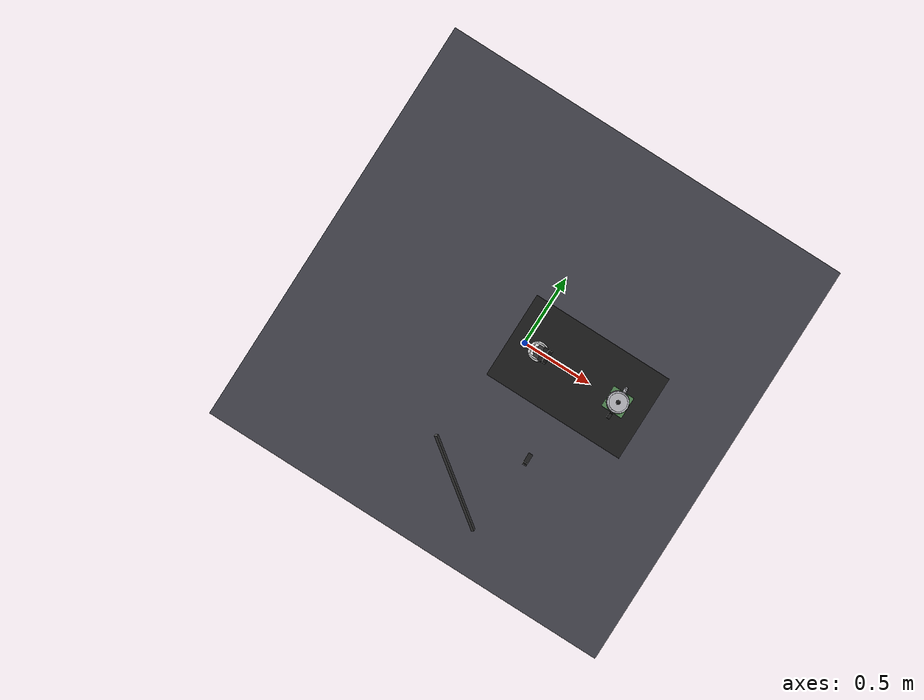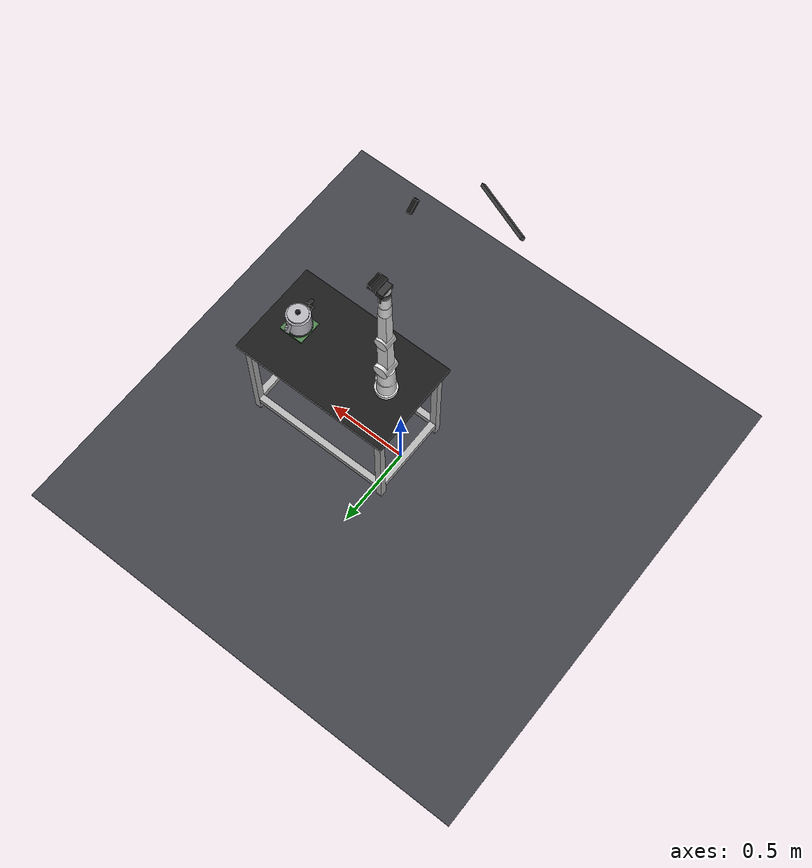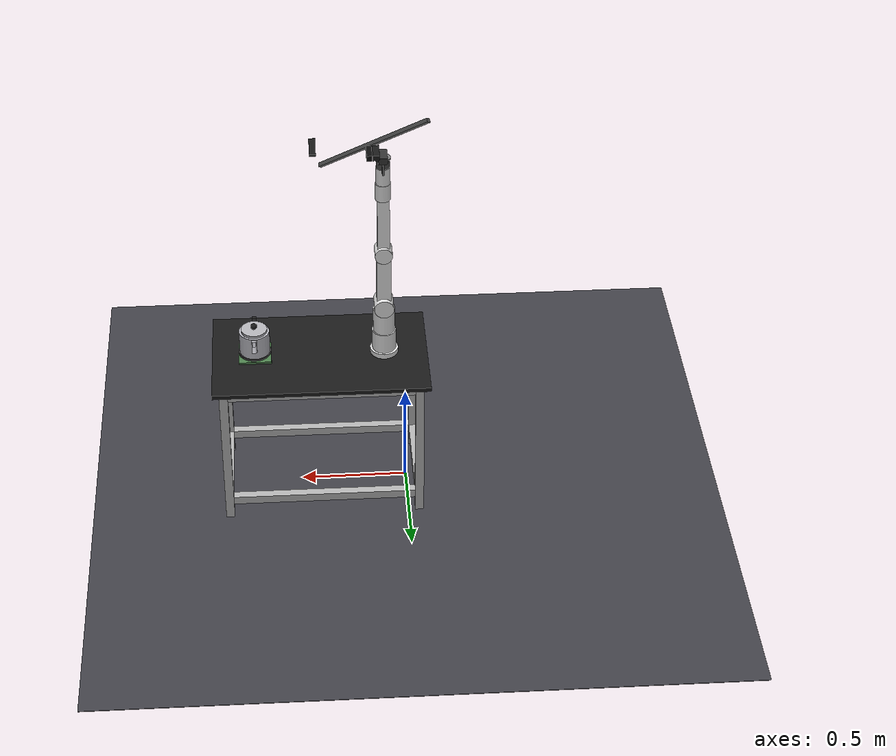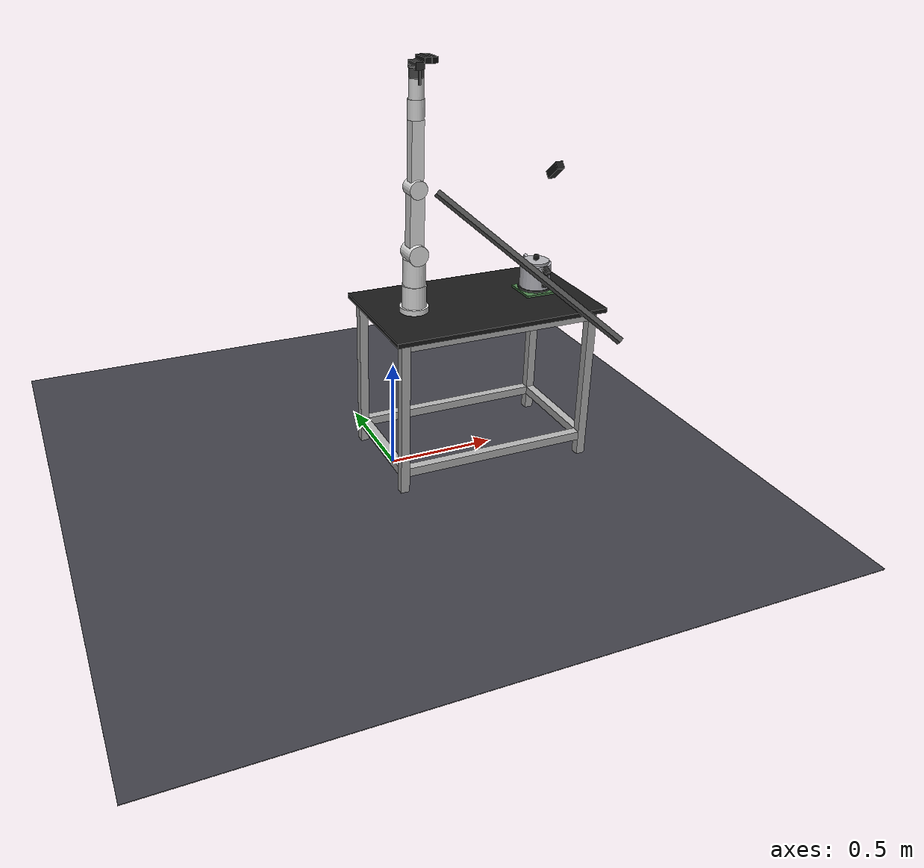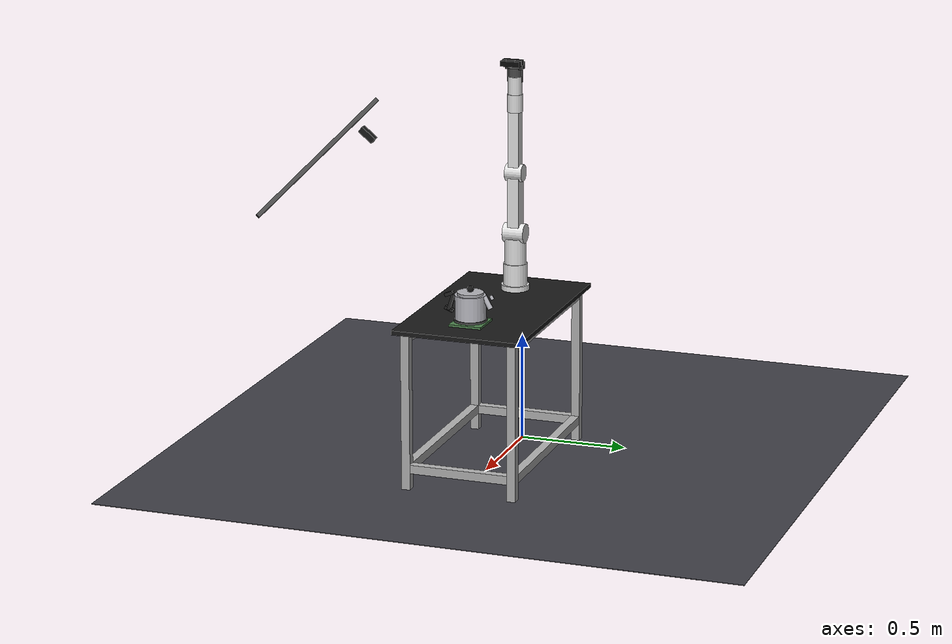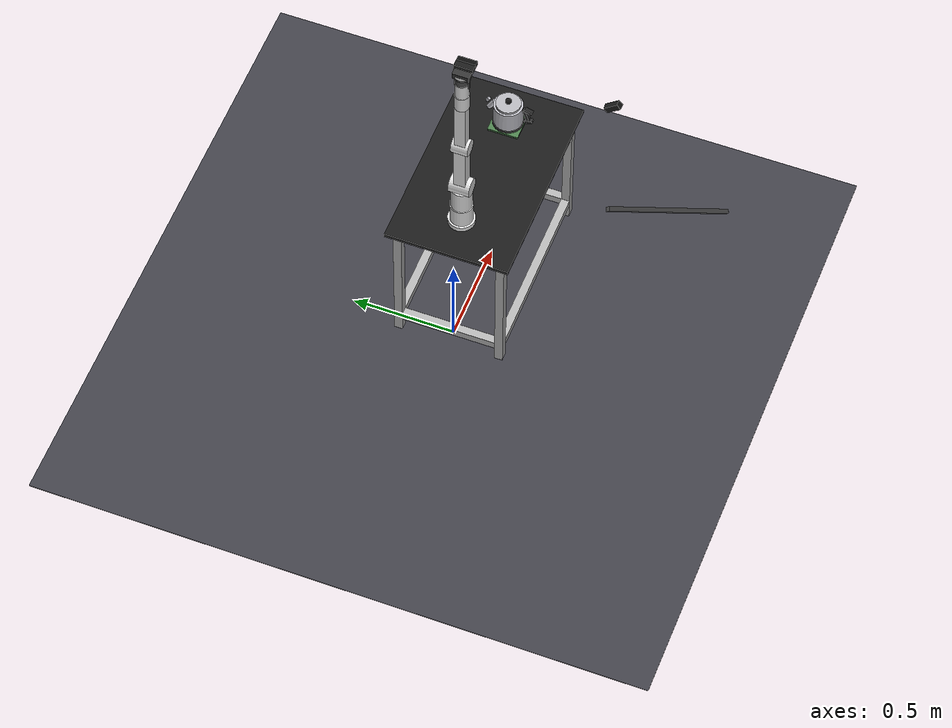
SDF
<?xml version="1.0" ?>
<sdf version="1.9">
  <world name="kettle_test">

    <!-- Physics settings -->
    <physics name="1ms" type="ignored">
      <max_step_size>0.001</max_step_size>
      <real_time_factor>1.0</real_time_factor>
    </physics>

    <!-- Required plugins -->
    <plugin filename="gz-sim-physics-system" name="gz::sim::systems::Physics"/>
    <plugin filename="gz-sim-sensors-system" name="gz::sim::systems::Sensors">
      <render_engine>ogre2</render_engine>
    </plugin>
    <plugin filename="gz-sim-scene-broadcaster-system" name="gz::sim::systems::SceneBroadcaster"/>
    <plugin filename="gz-sim-contact-system" name="gz::sim::systems::Contact"/>

    <!-- ==================== LIGHTING ==================== -->

    <!-- Overhead industrial lighting -->
    <light type="directional" name="overhead_light">
      <cast_shadows>true</cast_shadows>
      <pose>0 0 3 0 0 0</pose>
      <diffuse>0.9 0.9 0.9 1</diffuse>
      <specular>0.3 0.3 0.3 1</specular>
      <direction>0 0 -1</direction>
    </light>

    <!-- Fill light from side -->
    <light type="directional" name="fill_light">
      <cast_shadows>false</cast_shadows>
      <pose>2 2 2 0 0 0</pose>
      <diffuse>0.4 0.4 0.4 1</diffuse>
      <direction>-0.5 -0.5 -0.5</direction>
    </light>

    <!-- Back fill -->
    <light type="directional" name="back_light">
      <cast_shadows>false</cast_shadows>
      <pose>-2 0 2 0 0 0</pose>
      <diffuse>0.2 0.2 0.25 1</diffuse>
      <direction>0.5 0 -0.5</direction>
    </light>

    <!-- ==================== FLOOR ==================== -->

    <model name="floor">
      <static>true</static>
      <pose>0 0 0 0 0 0</pose>
      <link name="link">
        <collision name="collision">
          <geometry>
            <plane>
              <normal>0 0 1</normal>
              <size>3 3</size>
            </plane>
          </geometry>
        </collision>
        <visual name="visual">
          <geometry>
            <plane>
              <normal>0 0 1</normal>
              <size>3 3</size>
            </plane>
          </geometry>
          <material>
            <ambient>0.25 0.25 0.28 1</ambient>
            <diffuse>0.25 0.25 0.28 1</diffuse>
          </material>
        </visual>
      </link>
    </model>

    <!-- ==================== WORK TABLE ==================== -->
    <!--
      Aluminum extrusion style table (like 80/20)
      Surface at z=0.75m (standard work height)
      Size: 1.0m x 0.6m
    -->

    <model name="work_table">
      <static>true</static>
      <pose>0.4 0 0 0 0 0</pose>
      <link name="table_link">

        <!-- Table surface (black phenolic) -->
        <collision name="surface_collision">
          <pose>0 0 0.74 0 0 0</pose>
          <geometry>
            <box><size>1.0 0.6 0.02</size></box>
          </geometry>
          <surface>
            <friction>
              <ode><mu>0.9</mu><mu2>0.9</mu2></ode>
            </friction>
          </surface>
        </collision>
        <visual name="surface_visual">
          <pose>0 0 0.74 0 0 0</pose>
          <geometry>
            <box><size>1.0 0.6 0.02</size></box>
          </geometry>
          <material>
            <ambient>0.1 0.1 0.1 1</ambient>
            <diffuse>0.1 0.1 0.1 1</diffuse>
          </material>
        </visual>

        <!-- Aluminum extrusion legs (40mm profile) -->
        <visual name="leg_fl">
          <pose>0.45 0.25 0.365 0 0 0</pose>
          <geometry><box><size>0.04 0.04 0.73</size></box></geometry>
          <material><ambient>0.7 0.7 0.7 1</ambient><diffuse>0.7 0.7 0.7 1</diffuse></material>
        </visual>
        <visual name="leg_fr">
          <pose>0.45 -0.25 0.365 0 0 0</pose>
          <geometry><box><size>0.04 0.04 0.73</size></box></geometry>
          <material><ambient>0.7 0.7 0.7 1</ambient><diffuse>0.7 0.7 0.7 1</diffuse></material>
        </visual>
        <visual name="leg_bl">
          <pose>-0.45 0.25 0.365 0 0 0</pose>
          <geometry><box><size>0.04 0.04 0.73</size></box></geometry>
          <material><ambient>0.7 0.7 0.7 1</ambient><diffuse>0.7 0.7 0.7 1</diffuse></material>
        </visual>
        <visual name="leg_br">
          <pose>-0.45 -0.25 0.365 0 0 0</pose>
          <geometry><box><size>0.04 0.04 0.73</size></box></geometry>
          <material><ambient>0.7 0.7 0.7 1</ambient><diffuse>0.7 0.7 0.7 1</diffuse></material>
        </visual>

        <!-- Cross braces (front/back) -->
        <visual name="brace_front">
          <pose>0 0.25 0.1 0 0 0</pose>
          <geometry><box><size>0.86 0.04 0.04</size></box></geometry>
          <material><ambient>0.7 0.7 0.7 1</ambient></material>
        </visual>
        <visual name="brace_back">
          <pose>0 -0.25 0.1 0 0 0</pose>
          <geometry><box><size>0.86 0.04 0.04</size></box></geometry>
          <material><ambient>0.7 0.7 0.7 1</ambient></material>
        </visual>

        <!-- Cross braces (sides) -->
        <visual name="brace_left">
          <pose>0.45 0 0.1 0 0 0</pose>
          <geometry><box><size>0.04 0.46 0.04</size></box></geometry>
          <material><ambient>0.7 0.7 0.7 1</ambient></material>
        </visual>
        <visual name="brace_right">
          <pose>-0.45 0 0.1 0 0 0</pose>
          <geometry><box><size>0.04 0.46 0.04</size></box></geometry>
          <material><ambient>0.7 0.7 0.7 1</ambient></material>
        </visual>

        <!-- Top frame rails -->
        <visual name="rail_front">
          <pose>0 0.25 0.71 0 0 0</pose>
          <geometry><box><size>0.86 0.04 0.04</size></box></geometry>
          <material><ambient>0.7 0.7 0.7 1</ambient></material>
        </visual>
        <visual name="rail_back">
          <pose>0 -0.25 0.71 0 0 0</pose>
          <geometry><box><size>0.86 0.04 0.04</size></box></geometry>
          <material><ambient>0.7 0.7 0.7 1</ambient></material>
        </visual>

      </link>
    </model>

    <!-- ==================== FORCE PLATE ==================== -->
    <!--
      A designated zone where the kettle is placed down.
      Has a contact sensor to detect placement forces.
    -->

    <model name="force_plate">
      <static>true</static>
      <pose>0.7 0 0.76 0 0 0</pose>
      <link name="plate_link">
        <visual name="visual">
          <geometry>
            <box><size>0.15 0.15 0.01</size></box>
          </geometry>
          <material>
            <ambient>0.3 0.5 0.3 1</ambient>
            <diffuse>0.3 0.5 0.3 1</diffuse>
          </material>
        </visual>
        <collision name="collision">
          <geometry>
            <box><size>0.15 0.15 0.01</size></box>
          </geometry>
          <surface>
            <friction>
              <ode><mu>0.9</mu></ode>
            </friction>
          </surface>
        </collision>

        <!-- Contact sensor for force detection -->
        <sensor name="force_plate_contact" type="contact">
          <always_on>true</always_on>
          <update_rate>50</update_rate>
          <contact>
            <collision>collision</collision>
          </contact>
          <topic>force_plate/contact</topic>
        </sensor>
      </link>
    </model>

    <!-- ==================== XARM6 ==================== -->
    <!--
      UFFactory xArm6 mounted on table
      Positioned toward the back-left of the table
    -->

    <include>
      <uri>model://xarm6</uri>
      <name>xarm6</name>
      <pose>0.1 0 0.75 0 0 0</pose>
    </include>

    <!-- Fix arm to world (simulates bolting to table) -->
    <joint name="xarm6_mount" type="fixed">
      <parent>world</parent>
      <child>xarm6::link_base</child>
    </joint>

    <!-- ==================== KETTLE ==================== -->
    <!--
      Kettle placed on table, within arm reach
      Initial position: on force plate (pickup position)
    -->

    <include>
      <uri>model://kettle</uri>
      <name>kettle</name>
      <pose>0.7 0 0.77 0 0 1.57</pose>  <!-- Rotated so handle faces arm -->
    </include>

    <!-- ==================== OVERHEAD CAMERA ==================== -->
    <!--
      Monitors the work cell from above
      Angled view to see both arm and kettle
    -->

    <model name="overhead_camera">
      <static>true</static>
      <pose>0.4 -0.6 1.5 0 0.7 1.57</pose>

      <link name="camera_link">
        <!-- Camera housing -->
        <visual name="housing">
          <geometry>
            <box><size>0.08 0.03 0.03</size></box>
          </geometry>
          <material>
            <ambient>0.1 0.1 0.1 1</ambient>
            <diffuse>0.1 0.1 0.1 1</diffuse>
          </material>
        </visual>

        <!-- RGB Camera -->
        <sensor name="overhead_rgb" type="camera">
          <always_on>true</always_on>
          <update_rate>30</update_rate>
          <topic>overhead_camera</topic>
          <camera>
            <horizontal_fov>1.2</horizontal_fov>
            <image>
              <width>640</width>
              <height>480</height>
              <format>R8G8B8</format>
            </image>
            <clip>
              <near>0.1</near>
              <far>10.0</far>
            </clip>
          </camera>
        </sensor>
      </link>

      <!-- Mount arm -->
      <link name="mount">
        <pose>-0.15 0.3 -0.4 0 -0.7 -1.57</pose>
        <visual name="visual">
          <geometry>
            <box><size>0.02 0.02 0.8</size></box>
          </geometry>
          <material>
            <ambient>0.3 0.3 0.3 1</ambient>
          </material>
        </visual>
      </link>

      <joint name="mount_joint" type="fixed">
        <parent>mount</parent>
        <child>camera_link</child>
      </joint>
    </model>

  </world>
</sdf>

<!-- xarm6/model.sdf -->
<sdf version="1.9">
  <model name="xarm6">
    <static>false</static>

    <!-- Base Link (mounted to table) -->
    <link name="link_base">
      <inertial>
        <mass>2.0</mass>
        <inertia>
          <ixx>0.01</ixx><iyy>0.01</iyy><izz>0.01</izz>
        </inertia>
      </inertial>
      <visual name="base_visual">
        <geometry>
          <cylinder><radius>0.065</radius><length>0.05</length></cylinder>
        </geometry>
        <material>
          <ambient>0.9 0.9 0.9 1</ambient>
          <diffuse>0.9 0.9 0.9 1</diffuse>
        </material>
      </visual>
      <collision name="base_collision">
        <geometry>
          <cylinder><radius>0.065</radius><length>0.05</length></cylinder>
        </geometry>
      </collision>
    </link>

    <!-- Link 1: Shoulder rotation (267mm from base to joint 2) -->
    <link name="link1">
      <pose relative_to="joint1">0 0 0 0 0 0</pose>
      <inertial>
        <mass>2.5</mass>
        <pose>0 0 0.1 0 0 0</pose>
        <inertia>
          <ixx>0.02</ixx><iyy>0.02</iyy><izz>0.01</izz>
        </inertia>
      </inertial>
      <visual name="link1_housing">
        <pose>0 0 0.05 0 0 0</pose>
        <geometry>
          <cylinder><radius>0.055</radius><length>0.1</length></cylinder>
        </geometry>
        <material>
          <ambient>0.9 0.9 0.9 1</ambient>
          <diffuse>0.9 0.9 0.9 1</diffuse>
        </material>
      </visual>
      <visual name="link1_shoulder">
        <pose>0 0 0.16 0 0 0</pose>
        <geometry>
          <cylinder><radius>0.05</radius><length>0.12</length></cylinder>
        </geometry>
        <material>
          <ambient>0.9 0.9 0.9 1</ambient>
        </material>
      </visual>
      <collision name="link1_collision">
        <pose>0 0 0.1 0 0 0</pose>
        <geometry>
          <cylinder><radius>0.06</radius><length>0.2</length></cylinder>
        </geometry>
      </collision>
    </link>

    <joint name="joint1" type="revolute">
      <parent>link_base</parent>
      <child>link1</child>
      <pose relative_to="link_base">0 0 0.025 0 0 0</pose>
      <axis>
        <xyz>0 0 1</xyz>
        <limit>
          <lower>-6.28</lower>
          <upper>6.28</upper>
          <effort>50</effort>
          <velocity>3.14</velocity>
        </limit>
      </axis>
    </joint>

    <!-- Link 2: Upper arm (284.5mm) -->
    <link name="link2">
      <pose relative_to="joint2">0 0 0 0 0 0</pose>
      <inertial>
        <mass>1.8</mass>
        <pose>0 0 0.142 0 0 0</pose>
        <inertia>
          <ixx>0.03</ixx><iyy>0.03</iyy><izz>0.005</izz>
        </inertia>
      </inertial>
      <visual name="link2_joint">
        <pose>0 0 0 1.5708 0 0</pose>
        <geometry>
          <cylinder><radius>0.045</radius><length>0.1</length></cylinder>
        </geometry>
        <material>
          <ambient>0.9 0.9 0.9 1</ambient>
        </material>
      </visual>
      <visual name="link2_arm">
        <pose>0 0 0.142 0 0 0</pose>
        <geometry>
          <box><size>0.065 0.055 0.285</size></box>
        </geometry>
        <material>
          <ambient>0.9 0.9 0.9 1</ambient>
        </material>
      </visual>
      <collision name="link2_collision">
        <pose>0 0 0.142 0 0 0</pose>
        <geometry>
          <box><size>0.07 0.06 0.29</size></box>
        </geometry>
      </collision>
    </link>

    <joint name="joint2" type="revolute">
      <parent>link1</parent>
      <child>link2</child>
      <pose relative_to="link1">0 0 0.242 0 0 0</pose>
      <axis>
        <xyz>0 1 0</xyz>
        <limit>
          <lower>-2.06</lower>
          <upper>2.09</upper>
          <effort>50</effort>
          <velocity>3.14</velocity>
        </limit>
      </axis>
    </joint>

    <!-- Link 3: Forearm (284.5mm) -->
    <link name="link3">
      <pose relative_to="joint3">0 0 0 0 0 0</pose>
      <inertial>
        <mass>1.5</mass>
        <pose>0 0 0.142 0 0 0</pose>
        <inertia>
          <ixx>0.025</ixx><iyy>0.025</iyy><izz>0.004</izz>
        </inertia>
      </inertial>
      <visual name="link3_joint">
        <pose>0 0 0 1.5708 0 0</pose>
        <geometry>
          <cylinder><radius>0.04</radius><length>0.08</length></cylinder>
        </geometry>
        <material>
          <ambient>0.9 0.9 0.9 1</ambient>
        </material>
      </visual>
      <visual name="link3_arm">
        <pose>0 0 0.142 0 0 0</pose>
        <geometry>
          <box><size>0.055 0.05 0.285</size></box>
        </geometry>
        <material>
          <ambient>0.9 0.9 0.9 1</ambient>
        </material>
      </visual>
      <collision name="link3_collision">
        <pose>0 0 0.142 0 0 0</pose>
        <geometry>
          <box><size>0.06 0.055 0.29</size></box>
        </geometry>
      </collision>
    </link>

    <joint name="joint3" type="revolute">
      <parent>link2</parent>
      <child>link3</child>
      <pose relative_to="link2">0 0 0.2845 0 0 0</pose>
      <axis>
        <xyz>0 1 0</xyz>
        <limit>
          <lower>-3.93</lower>
          <upper>0.19</upper>
          <effort>32</effort>
          <velocity>3.14</velocity>
        </limit>
      </axis>
    </joint>

    <!-- Link 4: Wrist 1 (82mm) -->
    <link name="link4">
      <pose relative_to="joint4">0 0 0 0 0 0</pose>
      <inertial>
        <mass>1.2</mass>
        <pose>0 0 0.041 0 0 0</pose>
        <inertia>
          <ixx>0.008</ixx><iyy>0.008</iyy><izz>0.003</izz>
        </inertia>
      </inertial>
      <visual name="link4_visual">
        <pose>0 0 0.041 0 0 0</pose>
        <geometry>
          <cylinder><radius>0.035</radius><length>0.082</length></cylinder>
        </geometry>
        <material>
          <ambient>0.9 0.9 0.9 1</ambient>
        </material>
      </visual>
      <collision name="link4_collision">
        <pose>0 0 0.041 0 0 0</pose>
        <geometry>
          <cylinder><radius>0.04</radius><length>0.085</length></cylinder>
        </geometry>
      </collision>
    </link>

    <joint name="joint4" type="revolute">
      <parent>link3</parent>
      <child>link4</child>
      <pose relative_to="link3">0 0 0.2845 0 0 0</pose>
      <axis>
        <xyz>0 0 1</xyz>
        <limit>
          <lower>-6.28</lower>
          <upper>6.28</upper>
          <effort>20</effort>
          <velocity>3.14</velocity>
        </limit>
      </axis>
    </joint>

    <!-- Link 5: Wrist 2 (82mm) -->
    <link name="link5">
      <pose relative_to="joint5">0 0 0 0 0 0</pose>
      <inertial>
        <mass>1.0</mass>
        <pose>0 0 0.041 0 0 0</pose>
        <inertia>
          <ixx>0.006</ixx><iyy>0.006</iyy><izz>0.002</izz>
        </inertia>
      </inertial>
      <visual name="link5_visual">
        <pose>0 0 0.041 0 0 0</pose>
        <geometry>
          <cylinder><radius>0.032</radius><length>0.082</length></cylinder>
        </geometry>
        <material>
          <ambient>0.9 0.9 0.9 1</ambient>
        </material>
      </visual>
      <collision name="link5_collision">
        <pose>0 0 0.041 0 0 0</pose>
        <geometry>
          <cylinder><radius>0.035</radius><length>0.085</length></cylinder>
        </geometry>
      </collision>
    </link>

    <joint name="joint5" type="revolute">
      <parent>link4</parent>
      <child>link5</child>
      <pose relative_to="link4">0 0 0.082 0 0 0</pose>
      <axis>
        <xyz>0 1 0</xyz>
        <limit>
          <lower>-1.69</lower>
          <upper>3.14</upper>
          <effort>20</effort>
          <velocity>3.14</velocity>
        </limit>
      </axis>
    </joint>

    <!-- Link 6: Wrist 3 / Flange (42mm to flange surface) -->
    <link name="link6">
      <pose relative_to="joint6">0 0 0 0 0 0</pose>
      <inertial>
        <mass>0.5</mass>
        <pose>0 0 0.021 0 0 0</pose>
        <inertia>
          <ixx>0.002</ixx><iyy>0.002</iyy><izz>0.001</izz>
        </inertia>
      </inertial>
      <visual name="link6_visual">
        <pose>0 0 0.021 0 0 0</pose>
        <geometry>
          <cylinder><radius>0.03</radius><length>0.042</length></cylinder>
        </geometry>
        <material>
          <ambient>0.3 0.3 0.3 1</ambient>
          <diffuse>0.3 0.3 0.3 1</diffuse>
        </material>
      </visual>
      <visual name="flange">
        <pose>0 0 0.045 0 0 0</pose>
        <geometry>
          <cylinder><radius>0.035</radius><length>0.008</length></cylinder>
        </geometry>
        <material>
          <ambient>0.5 0.5 0.5 1</ambient>
        </material>
      </visual>
      <collision name="link6_collision">
        <pose>0 0 0.025 0 0 0</pose>
        <geometry>
          <cylinder><radius>0.035</radius><length>0.05</length></cylinder>
        </geometry>
      </collision>
    </link>

    <joint name="joint6" type="revolute">
      <parent>link5</parent>
      <child>link6</child>
      <pose relative_to="link5">0 0 0.082 0 0 0</pose>
      <axis>
        <xyz>0 0 1</xyz>
        <limit>
          <lower>-6.28</lower>
          <upper>6.28</upper>
          <effort>20</effort>
          <velocity>3.14</velocity>
        </limit>
      </axis>
    </joint>

    <!-- ==================== GRIPPER ==================== -->

    <!-- Gripper base attached to link6 flange -->
    <link name="gripper_base">
      <pose relative_to="gripper_joint">0 0 0 0 0 0</pose>
      <inertial>
        <mass>0.3</mass>
        <inertia>
          <ixx>0.001</ixx><iyy>0.001</iyy><izz>0.001</izz>
        </inertia>
      </inertial>
      <visual name="base_visual">
        <geometry>
          <box><size>0.04 0.08 0.03</size></box>
        </geometry>
        <material>
          <ambient>0.2 0.2 0.2 1</ambient>
          <diffuse>0.2 0.2 0.2 1</diffuse>
        </material>
      </visual>
      <!-- Camera mount bracket -->
      <visual name="camera_mount">
        <pose>0.03 0 0.02 0 0 0</pose>
        <geometry>
          <box><size>0.03 0.09 0.025</size></box>
        </geometry>
        <material>
          <ambient>0.1 0.1 0.1 1</ambient>
        </material>
      </visual>
      <collision name="gripper_collision">
        <geometry>
          <box><size>0.04 0.08 0.03</size></box>
        </geometry>
      </collision>

      <!-- Intel RealSense D435 (wrist-mounted) -->
      <visual name="realsense_d435">
        <pose>0.06 0 0.02 0 0 0</pose>
        <geometry>
          <box><size>0.025 0.09 0.025</size></box>
        </geometry>
        <material>
          <ambient>0.05 0.05 0.05 1</ambient>
          <diffuse>0.05 0.05 0.05 1</diffuse>
        </material>
      </visual>

      <sensor name="wrist_d435" type="rgbd_camera">
        <pose>0.07 0 0.02 0 0.4 0</pose>  <!-- Angled down toward work surface -->
        <always_on>1</always_on>
        <update_rate>30</update_rate>
        <topic>wrist_camera</topic>
        <camera>
          <horizontal_fov>1.518</horizontal_fov>  <!-- 87 degrees (D435 depth FOV) -->
          <image>
            <width>640</width>
            <height>480</height>
            <format>R8G8B8</format>
          </image>
          <clip>
            <near>0.2</near>
            <far>10.0</far>
          </clip>
          <depth_camera>
            <clip>
              <near>0.2</near>
              <far>10.0</far>
            </clip>
          </depth_camera>
        </camera>
      </sensor>
    </link>

    <joint name="gripper_joint" type="fixed">
      <parent>link6</parent>
      <child>gripper_base</child>
      <pose relative_to="link6">0 0 0.05 0 0 0</pose>
    </joint>

    <!-- Left finger -->
    <link name="left_finger">
      <pose relative_to="left_finger_joint">0 0 0 0 0 0</pose>
      <inertial>
        <mass>0.05</mass>
        <inertia>
          <ixx>0.0001</ixx><iyy>0.0001</iyy><izz>0.0001</izz>
        </inertia>
      </inertial>
      <visual name="finger_visual">
        <pose>0 0 -0.03 0 0 0</pose>
        <geometry>
          <box><size>0.01 0.012 0.06</size></box>
        </geometry>
        <material>
          <ambient>0.4 0.4 0.4 1</ambient>
        </material>
      </visual>
      <collision name="finger_collision">
        <pose>0 0 -0.03 0 0 0</pose>
        <geometry>
          <box><size>0.01 0.012 0.06</size></box>
        </geometry>
      </collision>
    </link>

    <joint name="left_finger_joint" type="prismatic">
      <parent>gripper_base</parent>
      <child>left_finger</child>
      <pose relative_to="gripper_base">0 0.03 -0.015 0 0 0</pose>
      <axis>
        <xyz>0 1 0</xyz>
        <limit>
          <lower>0</lower>
          <upper>0.02</upper>
          <effort>20</effort>
          <velocity>0.1</velocity>
        </limit>
      </axis>
    </joint>

    <!-- Right finger -->
    <link name="right_finger">
      <pose relative_to="right_finger_joint">0 0 0 0 0 0</pose>
      <inertial>
        <mass>0.05</mass>
        <inertia>
          <ixx>0.0001</ixx><iyy>0.0001</iyy><izz>0.0001</izz>
        </inertia>
      </inertial>
      <visual name="finger_visual">
        <pose>0 0 -0.03 0 0 0</pose>
        <geometry>
          <box><size>0.01 0.012 0.06</size></box>
        </geometry>
        <material>
          <ambient>0.4 0.4 0.4 1</ambient>
        </material>
      </visual>
      <collision name="finger_collision">
        <pose>0 0 -0.03 0 0 0</pose>
        <geometry>
          <box><size>0.01 0.012 0.06</size></box>
        </geometry>
      </collision>
    </link>

    <joint name="right_finger_joint" type="prismatic">
      <parent>gripper_base</parent>
      <child>right_finger</child>
      <pose relative_to="gripper_base">0 -0.03 -0.015 0 0 0</pose>
      <axis>
        <xyz>0 -1 0</xyz>
        <limit>
          <lower>0</lower>
          <upper>0.02</upper>
          <effort>20</effort>
          <velocity>0.1</velocity>
        </limit>
      </axis>
    </joint>

    <!-- Tool frame (tip of gripper fingers) -->
    <frame name="tool_frame" attached_to="gripper_base">
      <pose>0 0 -0.06 0 0 0</pose>
    </frame>

    <!-- ==================== JOINT CONTROLLERS ==================== -->
    <!-- Position controllers for each joint to enable position control -->

    <plugin filename="gz-sim-joint-position-controller-system"
            name="gz::sim::systems::JointPositionController">
      <joint_name>joint1</joint_name>
      <initial_position>3.14159</initial_position>  <!-- Facing toward table -->
      <p_gain>100</p_gain>
      <i_gain>0.1</i_gain>
      <d_gain>10</d_gain>
    </plugin>

    <plugin filename="gz-sim-joint-position-controller-system"
            name="gz::sim::systems::JointPositionController">
      <joint_name>joint2</joint_name>
      <initial_position>-0.6</initial_position>
      <p_gain>100</p_gain>
      <i_gain>0.1</i_gain>
      <d_gain>10</d_gain>
    </plugin>

    <plugin filename="gz-sim-joint-position-controller-system"
            name="gz::sim::systems::JointPositionController">
      <joint_name>joint3</joint_name>
      <initial_position>-1.2</initial_position>
      <p_gain>100</p_gain>
      <i_gain>0.1</i_gain>
      <d_gain>10</d_gain>
    </plugin>

    <plugin filename="gz-sim-joint-position-controller-system"
            name="gz::sim::systems::JointPositionController">
      <joint_name>joint4</joint_name>
      <initial_position>0</initial_position>
      <p_gain>50</p_gain>
      <i_gain>0.1</i_gain>
      <d_gain>5</d_gain>
    </plugin>

    <plugin filename="gz-sim-joint-position-controller-system"
            name="gz::sim::systems::JointPositionController">
      <joint_name>joint5</joint_name>
      <initial_position>-1.0</initial_position>
      <p_gain>50</p_gain>
      <i_gain>0.1</i_gain>
      <d_gain>5</d_gain>
    </plugin>

    <plugin filename="gz-sim-joint-position-controller-system"
            name="gz::sim::systems::JointPositionController">
      <joint_name>joint6</joint_name>
      <initial_position>0</initial_position>
      <p_gain>30</p_gain>
      <i_gain>0.1</i_gain>
      <d_gain>3</d_gain>
    </plugin>

    <!-- Gripper finger controllers -->
    <plugin filename="gz-sim-joint-position-controller-system"
            name="gz::sim::systems::JointPositionController">
      <joint_name>left_finger_joint</joint_name>
      <initial_position>0.01</initial_position>
      <p_gain>20</p_gain>
      <i_gain>0.1</i_gain>
      <d_gain>2</d_gain>
    </plugin>

    <plugin filename="gz-sim-joint-position-controller-system"
            name="gz::sim::systems::JointPositionController">
      <joint_name>right_finger_joint</joint_name>
      <initial_position>0.01</initial_position>
      <p_gain>20</p_gain>
      <i_gain>0.1</i_gain>
      <d_gain>2</d_gain>
    </plugin>

  </model>
</sdf>

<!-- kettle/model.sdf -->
<sdf version="1.9">
  <model name="kettle">
    <static>false</static>

    <!-- Main kettle body -->
    <link name="body">
      <pose>0 0 0.06 0 0 0</pose>
      <inertial>
        <mass>0.5</mass>
        <pose>0 0 0 0 0 0</pose>
        <inertia>
          <ixx>0.002</ixx>
          <iyy>0.002</iyy>
          <izz>0.001</izz>
        </inertia>
      </inertial>

      <!-- Kettle body (main cylinder) -->
      <visual name="body_visual">
        <geometry>
          <cylinder>
            <radius>0.07</radius>
            <length>0.12</length>
          </cylinder>
        </geometry>
        <material>
          <ambient>0.75 0.75 0.78 1</ambient>
          <diffuse>0.75 0.75 0.78 1</diffuse>
          <specular>0.9 0.9 0.9 1</specular>
        </material>
      </visual>

      <!-- Kettle bottom (slightly wider) -->
      <visual name="bottom_visual">
        <pose>0 0 -0.055 0 0 0</pose>
        <geometry>
          <cylinder>
            <radius>0.075</radius>
            <length>0.01</length>
          </cylinder>
        </geometry>
        <material>
          <ambient>0.3 0.3 0.3 1</ambient>
          <diffuse>0.3 0.3 0.3 1</diffuse>
        </material>
      </visual>

      <!-- Lid -->
      <visual name="lid_visual">
        <pose>0 0 0.065 0 0 0</pose>
        <geometry>
          <cylinder>
            <radius>0.06</radius>
            <length>0.015</length>
          </cylinder>
        </geometry>
        <material>
          <ambient>0.7 0.7 0.72 1</ambient>
          <diffuse>0.7 0.7 0.72 1</diffuse>
        </material>
      </visual>

      <!-- Lid knob -->
      <visual name="knob_visual">
        <pose>0 0 0.085 0 0 0</pose>
        <geometry>
          <sphere>
            <radius>0.015</radius>
          </sphere>
        </geometry>
        <material>
          <ambient>0.1 0.1 0.1 1</ambient>
          <diffuse>0.1 0.1 0.1 1</diffuse>
        </material>
      </visual>

      <!-- Handle (approximated with boxes since tubes are complex) -->
      <!-- Handle vertical part -->
      <visual name="handle_vertical">
        <pose>-0.09 0 0.02 0 0.3 0</pose>
        <geometry>
          <box>
            <size>0.015 0.02 0.08</size>
          </box>
        </geometry>
        <material>
          <ambient>0.15 0.15 0.15 1</ambient>
          <diffuse>0.15 0.15 0.15 1</diffuse>
        </material>
      </visual>

      <!-- Handle top curve -->
      <visual name="handle_top">
        <pose>-0.1 0 0.055 0 1.2 0</pose>
        <geometry>
          <box>
            <size>0.015 0.02 0.04</size>
          </box>
        </geometry>
        <material>
          <ambient>0.15 0.15 0.15 1</ambient>
          <diffuse>0.15 0.15 0.15 1</diffuse>
        </material>
      </visual>

      <!-- Handle bottom curve -->
      <visual name="handle_bottom">
        <pose>-0.1 0 -0.015 0 -1.2 0</pose>
        <geometry>
          <box>
            <size>0.015 0.02 0.04</size>
          </box>
        </geometry>
        <material>
          <ambient>0.15 0.15 0.15 1</ambient>
          <diffuse>0.15 0.15 0.15 1</diffuse>
        </material>
      </visual>

      <!-- Spout -->
      <visual name="spout_visual">
        <pose>0.08 0 0.03 0 -0.5 0</pose>
        <geometry>
          <cylinder>
            <radius>0.012</radius>
            <length>0.06</length>
          </cylinder>
        </geometry>
        <material>
          <ambient>0.75 0.75 0.78 1</ambient>
          <diffuse>0.75 0.75 0.78 1</diffuse>
        </material>
      </visual>

      <!-- Spout tip -->
      <visual name="spout_tip">
        <pose>0.1 0 0.055 0 -0.5 0</pose>
        <geometry>
          <cylinder>
            <radius>0.008</radius>
            <length>0.02</length>
          </cylinder>
        </geometry>
        <material>
          <ambient>0.75 0.75 0.78 1</ambient>
          <diffuse>0.75 0.75 0.78 1</diffuse>
        </material>
      </visual>

      <!-- Collision geometry (simplified) -->
      <collision name="body_collision">
        <geometry>
          <cylinder>
            <radius>0.075</radius>
            <length>0.12</length>
          </cylinder>
        </geometry>
        <surface>
          <friction>
            <ode>
              <mu>0.8</mu>
              <mu2>0.8</mu2>
            </ode>
          </friction>
          <contact>
            <ode>
              <kp>1e6</kp>
              <kd>100</kd>
            </ode>
          </contact>
        </surface>
      </collision>

      <!-- Handle collision -->
      <collision name="handle_collision">
        <pose>-0.1 0 0.02 0 0 0</pose>
        <geometry>
          <box>
            <size>0.03 0.025 0.1</size>
          </box>
        </geometry>
      </collision>

      <!-- Contact sensor on bottom of kettle -->
      <sensor name="kettle_contact" type="contact">
        <always_on>true</always_on>
        <update_rate>50</update_rate>
        <contact>
          <collision>body_collision</collision>
        </contact>
        <topic>kettle/contact</topic>
      </sensor>

    </link>

    <!-- Frame for gripper attachment point (center of handle) -->
    <frame name="grip_point" attached_to="body">
      <pose>-0.1 0 0.02 0 0 0</pose>
    </frame>

  </model>
</sdf>
